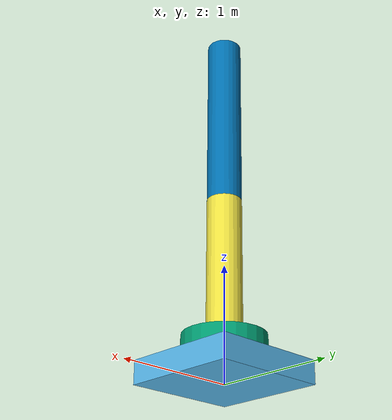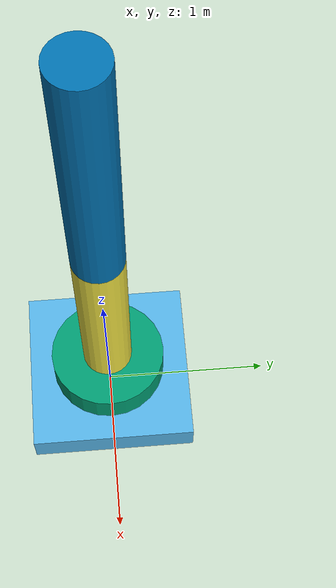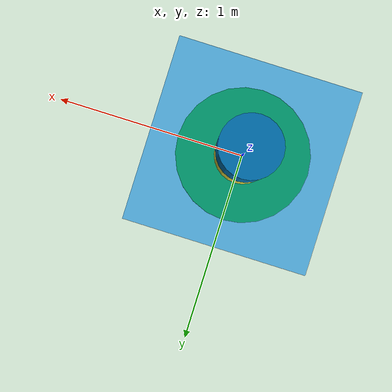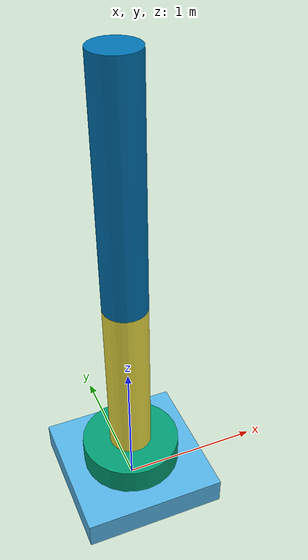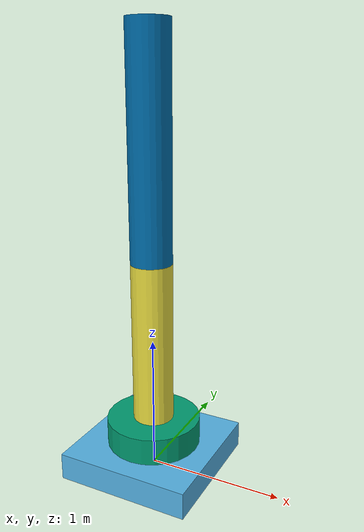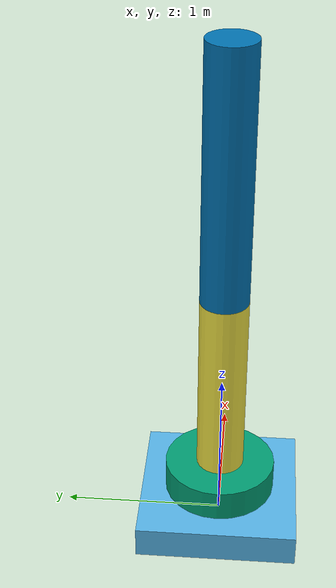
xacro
<?xml version = "1.0" ?>

<robot name = "manipulator" xmlns:xacro="http://www.ros.org/wiki/xacro">

  <!-- Include xacros that define the types of joints and links present -->
  <xacro:include filename = "$(find manipulator_description)/urdf/links_joints.xacro" />

  <!-- Constant definitions -->
  <xacro:property name = "base_height" value = "0.2" />
  <xacro:property name = "L1" value = "0.2" />
  <xacro:property name = "L2" value = "1.2" />
  <xacro:property name = "L3" value = "1.6" />

  <!-- Definition of the robot using the included macros -->

  <!-- Used for fixing robot to Gazebo 'base_link' -->
  <link name="world"/>

  <joint name="fixed" type="fixed">
    <parent link="world"/>
    <child link="base_link"/>
  </joint>

  <box_link
    name = "base_link"
    origin_rpy = "0 0 0"
    origin_xyz = "0 0 ${base_height/2}"
    size = "1 1 ${base_height}"
    mass = "10"
    ixx = "10" ixy = "0"   ixz = "0"
               iyy = "10"  iyz = "0"
                           izz = "10"
  />

  <revolute_joint
    name = "q1" type = "revolute"
    axis_xyz = "0 0 1"
    origin_rpy = "0 0 0" origin_xyz = "0 0 ${base_height}"
    parent = "base_link"
    child = "link1"
    limit_e = "1000.0" limit_l = "-3.14" limit_u = "3.14" limit_v = "0.5"
  />

  <cylinder_link
    name = "link1"
    origin_rpy = "0 0 0" origin_xyz = "0 0 ${L1/2}"
    radius = "0.35" length = "${L1}"
    mass = "4"
    ixx = "3" ixy = "0"   ixz = "0"
              iyy = "3"  iyz = "0"
                          izz = "3"
  />

  <revolute_joint
    name = "q2" type = "revolute"
    axis_xyz = "0 1 0"
    origin_rpy = "0 0 0" origin_xyz = "0 0 ${L1}"
    parent = "link1"
    child = "link2"
    limit_e = "1000.0" limit_l = "-3.14" limit_u = "3.14" limit_v = "0.5"
  />

  <cylinder_link
    name = "link2"
    origin_rpy = "0 0 0" origin_xyz = "0 0 ${L2/2}"
    radius = "0.15" length = "${L2}"
    mass = "6"
    ixx = "5" ixy = "0"   ixz = "0"
              iyy = "5"  iyz = "0"
                          izz = "5"
  />

  <revolute_joint
    name = "q3" type = "revolute"
    axis_xyz = "0 1 0"
    origin_rpy = "0 0 0" origin_xyz = "0 0 ${L2}"
    parent = "link2"
    child = "link3"
    limit_e = "1000.0" limit_l = "-3.14" limit_u = "3.14" limit_v = "0.5"
  />

  <cylinder_link
    name = "link3"
    origin_rpy = "0 0 0" origin_xyz = "0 0 ${L3/2}"
    radius = "0.15" length = "${L3}"
    mass = "8"
    ixx = "6" ixy = "0"   ixz = "0"
              iyy = "6"   iyz = "0"
                          izz = "6"
  />
  <!-- End robot description -->

  <!-- Gazebo node for ros control -->
  <gazebo>
    <plugin name="gazebo_ros_control" filename="libgazebo_ros_control.so">
    </plugin>
  </gazebo>

</robot>

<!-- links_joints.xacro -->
<robot xmlns:xacro="http://www.ros.org/wiki/xacro">

  <!-- Joint macro definitions -->
  <xacro:macro name="revolute_joint" params="name type axis_xyz origin_rpy origin_xyz parent child limit_e limit_l limit_u limit_v">
    <joint name="${name}" type="${type}">
      <axis xyz="${axis_xyz}" />
      <limit effort="${limit_e}" lower="${limit_l}" upper="${limit_u}" velocity="${limit_v}" />
      <origin rpy="${origin_rpy}" xyz="${origin_xyz}" />
      <parent link="${parent}" />
      <child link="${child}" />
    </joint>

    <transmission name = "${name}_trans">
      <type>transmission_interface/SimpleTransmission</type>
      <joint name = "${name}">
        <hardwareInterface>hardware_interface/EffortJointInterface</hardwareInterface>
      </joint>
      <actuator name = "${name}_motor">
        <mechanicalReduction> 1 </mechanicalReduction>
        <hardwareInterface>hardware_interface/EffortJointInterface</hardwareInterface>
      </actuator>
    </transmission>
  </xacro:macro>
  <!-- End joint macro definitions -->

  <!-- Link macro definitions -->
  <xacro:macro name="cylinder_link" params="name origin_xyz origin_rpy radius length mass ixx ixy ixz iyy iyz izz">
    <link name="${name}">
      <inertial>
        <origin xyz="${origin_xyz}" rpy="${origin_rpy}"/>
        <mass value="${mass}"/>
        <inertia ixx="${ixx}"  ixy="${ixy}"  ixz="${ixz}" iyy="${iyy}" iyz="${iyz}" izz="${izz}" />
      </inertial>

      <visual>
        <origin rpy="${origin_rpy}" xyz="${origin_xyz}" />
        <geometry>
          <cylinder radius="${radius}" length="${length}" />
        </geometry>
      </visual>

      <collision>
        <origin xyz="${origin_xyz}" rpy="${origin_rpy}" />
        <geometry>
          <cylinder radius="${radius}" length="${length}" />
        </geometry>
      </collision>
    </link>
  </xacro:macro>

  <xacro:macro name="box_link" params="name origin_xyz origin_rpy size mass ixx ixy ixz iyy iyz izz">
    <link name="${name}">
      <inertial>
        <origin xyz="${origin_xyz}" rpy="${origin_rpy}"/>
        <mass value="${mass}"/>
        <inertia ixx="${ixx}"  ixy="${ixy}"  ixz="${ixz}" iyy="${iyy}" iyz="${iyz}" izz="${izz}" />
      </inertial>

      <visual>
        <origin xyz="${origin_xyz}" rpy="${origin_rpy}" />
        <geometry>
          <box size="${size}" />
        </geometry>
      </visual>

      <collision>
        <origin xyz="${origin_xyz}" rpy="${origin_rpy}" />
        <geometry>
          <box size="${size}"/>
        </geometry>
      </collision>
    </link>
  </xacro:macro>
  <!-- End link macro definitions -->

</robot>
